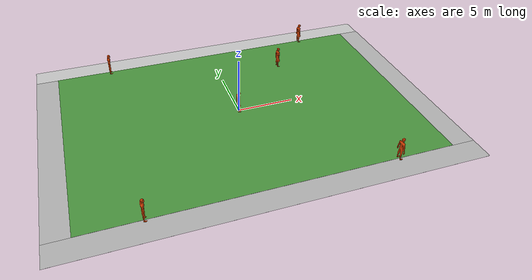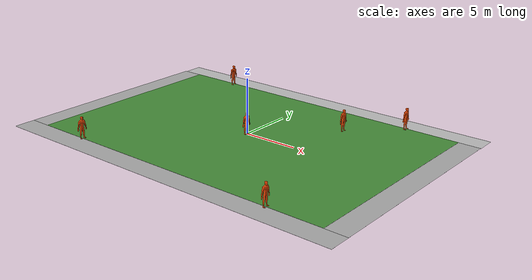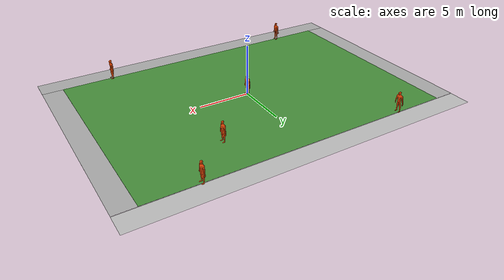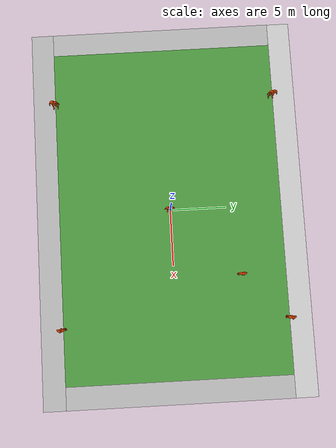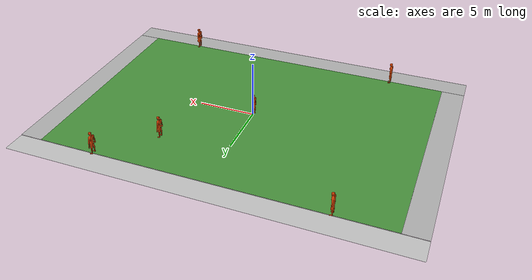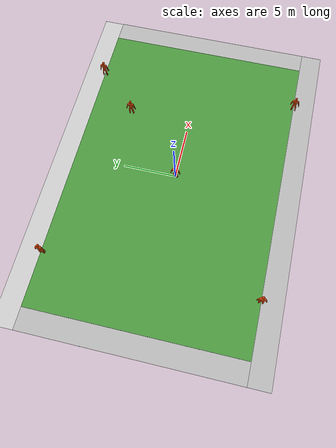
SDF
<sdf version="1.6">
 <world name="default">
  <light name="sun" type="directional">
   <pose>0 0 10 0 -0 0</pose>
   <diffuse>0.8 0.8 0.8 1</diffuse>
   <specular>0.2 0.2 0.2 1</specular>
   <attenuation>
    <range>1000</range>
    <constant>0.9</constant>
    <linear>0.01</linear>
    <quadratic>0.001</quadratic>
   </attenuation>
   <direction>-0.5 0.1 -0.9</direction>
  </light>
  <physics name="default_physics" default="0" type="ode">
   <max_step_size>0.001</max_step_size>
   <real_time_factor>1</real_time_factor>
   <real_time_update_rate>1000</real_time_update_rate>
  </physics>
  <scene><ambient>0.4 0.4 0.4 1</ambient><background>0.7 0.7 0.7 1</background><shadows>1</shadows></scene>
  <gravity>0 0 -9.8</gravity>
  <magnetic_field>6e-06 2.3e-05 -4.2e-05</magnetic_field>
  <atmosphere type="adiabatic"/>
  <spherical_coordinates>
   <surface_model>EARTH_WGS84</surface_model>
   <latitude_deg>0</latitude_deg>
   <longitude_deg>0</longitude_deg>
   <elevation>0</elevation>
   <heading_deg>0</heading_deg>
  </spherical_coordinates>
  <model name="robocup_3d_field">
   <static>1</static>
   <link name="field">
    <pose>0 0 0.01 0 -0 0</pose>
    <collision name="collision">
     <geometry><plane><normal>0 0 1</normal><size>30 20</size></plane></geometry>
     <surface><friction><ode><mu>100</mu><mu2>50</mu2></ode></friction></surface>
    </collision>
    <visual name="base1">
     <pose>0 11 0.001 0 -0 0</pose>
     <cast_shadows>0</cast_shadows>
     <geometry><plane><normal>0 0 1</normal><size>34 2</size></plane></geometry>
     <material>
      <script>
       <uri>model://robocup_3Dsim_field/materials/scripts/</uri>
       <uri>model://robocup_3Dsim_field/materials/textures/</uri>
       <name>RoboCup/FieldBorder</name>
      </script>
     </material>
    </visual>
    <visual name="base2">
     <pose>0 -11 0.001 0 -0 0</pose>
     <cast_shadows>0</cast_shadows>
     <geometry><plane><normal>0 0 1</normal><size>34 2</size></plane></geometry>
     <material>
      <script>
       <uri>model://robocup_3Dsim_field/materials/scripts/</uri>
       <uri>model://robocup_3Dsim_field/materials/textures/</uri>
       <name>RoboCup/FieldBorder</name>
      </script>
     </material>
    </visual>
    <visual name="base3">
     <pose>16 0 0.001 0 -0 0</pose>
     <cast_shadows>0</cast_shadows>
     <geometry><plane><normal>0 0 1</normal><size>2 20</size></plane></geometry>
     <material>
      <script>
       <uri>model://robocup_3Dsim_field/materials/scripts/</uri>
       <uri>model://robocup_3Dsim_field/materials/textures/</uri>
       <name>RoboCup/FieldBorder</name>
      </script>
     </material>
    </visual>
    <visual name="base4">
     <pose>-16 0 0.001 0 -0 0</pose>
     <cast_shadows>0</cast_shadows>
     <geometry><plane><normal>0 0 1</normal><size>2 20</size></plane></geometry>
     <material>
      <script>
       <uri>model://robocup_3Dsim_field/materials/scripts/</uri>
       <uri>model://robocup_3Dsim_field/materials/textures/</uri>
       <name>RoboCup/FieldBorder</name>
      </script>
     </material>
    </visual>
    <visual name="carpet">
     <cast_shadows>0</cast_shadows>
     <geometry><plane><normal>0 0 1</normal><size>30 20</size></plane></geometry>
     <material>
      <script>
       <uri>model://robocup_3Dsim_field/materials/scripts/</uri>
       <uri>model://robocup_3Dsim_field/materials/textures/</uri>
       <name>RoboCup/Grass</name>
      </script>
     </material>
    </visual>
   </link>
   <pose>0.007115 0.001542 0 0 -0 0</pose>
  </model>
  <model name="lowpoly_human">
   <static>0</static>
   <link name="link">
    <inertial>
     <pose>0 0 -1 0 -0 0</pose>
     <mass>80</mass>
     <inertia><ixx>24.88</ixx><ixy>0</ixy><ixz>0</ixz><iyy>25.73</iyy><iyz>0</iyz><izz>2.48</izz></inertia>
    </inertial>
    <collision name="bottom">
     <pose>0 0 0.01 0 -0 1.57</pose>
     <geometry><box><size>0.5 0.35 0.02</size></box></geometry>
    </collision>
    <visual name="visual">
     <geometry>
      <mesh><uri>model://lowpoly_human/meshes/lowpoly_human.dae</uri><scale>1 1 1</scale></mesh>
     </geometry>
    </visual>
    <velocity_decay><linear>0</linear><angular>0</angular></velocity_decay>
   </link>
   <pose>9.94112 9.92068 0.01 1e-06 -0 0.000103</pose>
  </model>
  <model name="lowpoly_human_0">
   <static>0</static>
   <link name="link">
    <inertial>
     <pose>0 0 -1 0 -0 0</pose>
     <mass>80</mass>
     <inertia><ixx>24.88</ixx><ixy>0</ixy><ixz>0</ixz><iyy>25.73</iyy><iyz>0</iyz><izz>2.48</izz></inertia>
    </inertial>
    <collision name="bottom">
     <pose>0 0 0.01 0 -0 1.57</pose>
     <geometry><box><size>0.5 0.35 0.02</size></box></geometry>
    </collision>
    <visual name="visual">
     <geometry>
      <mesh><uri>model://lowpoly_human/meshes/lowpoly_human.dae</uri><scale>1 1 1</scale></mesh>
     </geometry>
    </visual>
    <velocity_decay><linear>0</linear><angular>0</angular></velocity_decay>
   </link>
   <pose>5.98525 5.95858 0.01 -1e-06 0 1.8e-05</pose>
  </model>
  <model name="lowpoly_human_1">
   <static>0</static>
   <link name="link">
    <inertial>
     <pose>0 0 -1 0 -0 0</pose>
     <mass>80</mass>
     <inertia><ixx>24.88</ixx><ixy>0</ixy><ixz>0</ixz><iyy>25.73</iyy><iyz>0</iyz><izz>2.48</izz></inertia>
    </inertial>
    <collision name="bottom">
     <pose>0 0 0.01 0 -0 1.57</pose>
     <geometry><box><size>0.5 0.35 0.02</size></box></geometry>
    </collision>
    <visual name="visual">
     <geometry>
      <mesh><uri>model://lowpoly_human/meshes/lowpoly_human.dae</uri><scale>1 1 1</scale></mesh>
     </geometry>
    </visual>
    <velocity_decay><linear>0</linear><angular>0</angular></velocity_decay>
   </link>
   <pose>-10.0271 9.82732 0.01 1e-06 0 -0.000139</pose>
  </model>
  <model name="lowpoly_human_2">
   <static>0</static>
   <link name="link">
    <inertial>
     <pose>0 0 -1 0 -0 0</pose>
     <mass>80</mass>
     <inertia><ixx>24.88</ixx><ixy>0</ixy><ixz>0</ixz><iyy>25.73</iyy><iyz>0</iyz><izz>2.48</izz></inertia>
    </inertial>
    <collision name="bottom">
     <pose>0 0 0.01 0 -0 1.57</pose>
     <geometry><box><size>0.5 0.35 0.02</size></box></geometry>
    </collision>
    <visual name="visual">
     <geometry>
      <mesh><uri>model://lowpoly_human/meshes/lowpoly_human.dae</uri><scale>1 1 1</scale></mesh>
     </geometry>
    </visual>
    <velocity_decay><linear>0</linear><angular>0</angular></velocity_decay>
   </link>
   <pose>-10.0964 -9.96392 0.01 -1e-06 -1e-06 -2.1e-05</pose>
  </model>
  <model name="lowpoly_human_3">
   <static>0</static>
   <link name="link">
    <inertial>
     <pose>0 0 -1 0 -0 0</pose>
     <mass>80</mass>
     <inertia><ixx>24.88</ixx><ixy>0</ixy><ixz>0</ixz><iyy>25.73</iyy><iyz>0</iyz><izz>2.48</izz></inertia>
    </inertial>
    <collision name="bottom">
     <pose>0 0 0.01 0 -0 1.57</pose>
     <geometry><box><size>0.5 0.35 0.02</size></box></geometry>
    </collision>
    <visual name="visual">
     <geometry>
      <mesh><uri>model://lowpoly_human/meshes/lowpoly_human.dae</uri><scale>1 1 1</scale></mesh>
     </geometry>
    </visual>
    <velocity_decay><linear>0</linear><angular>0</angular></velocity_decay>
   </link>
   <pose>9.99526 -9.98986 0.01 1e-06 -0 -0.000148</pose>
  </model>
  <model name="lowpoly_human_4">
   <static>0</static>
   <link name="link">
    <inertial>
     <pose>0 0 -1 0 -0 0</pose>
     <mass>80</mass>
     <inertia><ixx>24.88</ixx><ixy>0</ixy><ixz>0</ixz><iyy>25.73</iyy><iyz>0</iyz><izz>2.48</izz></inertia>
    </inertial>
    <collision name="bottom">
     <pose>0 0 0.01 0 -0 1.57</pose>
     <geometry><box><size>0.5 0.35 0.02</size></box></geometry>
    </collision>
    <visual name="visual">
     <geometry>
      <mesh><uri>model://lowpoly_human/meshes/lowpoly_human.dae</uri><scale>1 1 1</scale></mesh>
     </geometry>
    </visual>
    <velocity_decay><linear>0</linear><angular>0</angular></velocity_decay>
   </link>
   <pose>-0.051557 -0.054665 0.009999 -1e-06 1e-06 -7.5e-05</pose>
  </model>
 </world>
</sdf>
